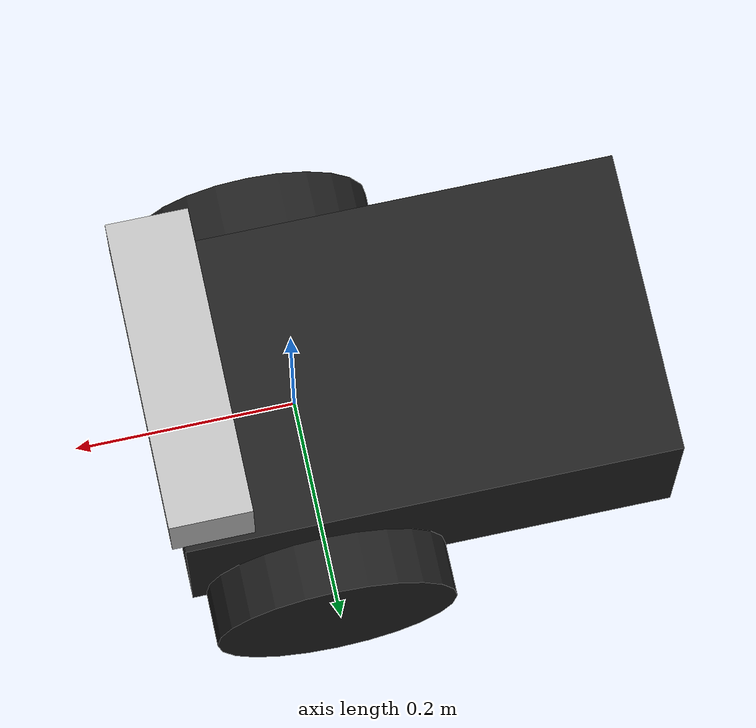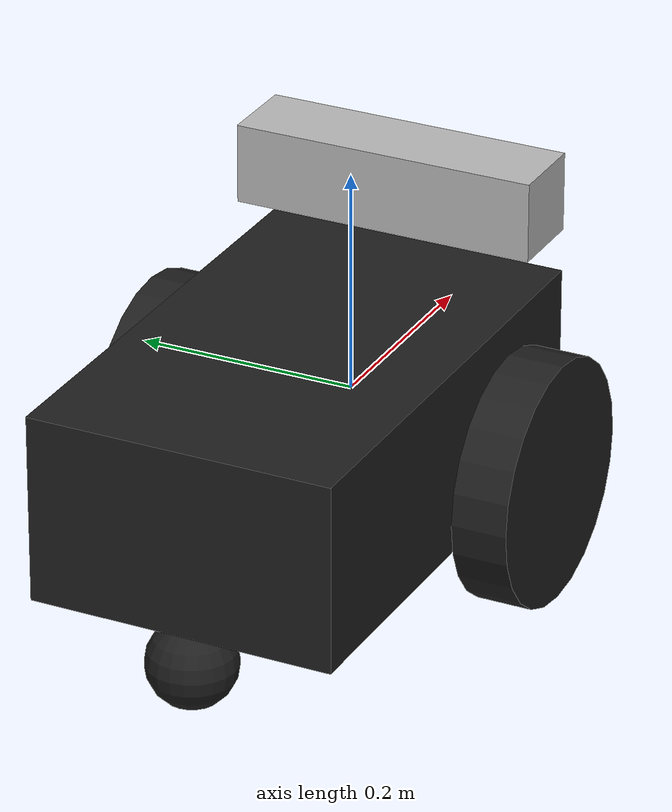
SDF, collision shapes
<?xml version='1.0'?>
<sdf version='1.6'>
  <model name='pioneer_with_kinect'>
    <model name='kinect_ros'>
      <pose frame=''>0.09846 0.001954 0.157068 0 -0 0</pose>
      <link name='link'>
        <inertial>
          <mass>0.1</mass>
        </inertial>
        <collision name='collision'>
          <geometry>
            <box>
              <size>0.073 0.276 0.072</size>
            </box>
          </geometry>
        </collision>
        <visual name='visual'>
          <geometry>
            <mesh>
              <uri>model://kinect/meshes/kinect.dae</uri>
            </mesh>
          </geometry>
        </visual>
        <sensor name='camera' type='depth'>
          <update_rate>20</update_rate>
          <camera name='__default__'>
            <horizontal_fov>1.0472</horizontal_fov>
            <image>
              <width>640</width>
              <height>480</height>
              <format>R8G8B8</format>
            </image>
            <clip>
              <near>0.05</near>
              <far>3</far>
            </clip>
          </camera>
          <plugin name='camera_plugin' filename='libgazebo_ros_openni_kinect.so'>
            <baseline>0.2</baseline>
            <alwaysOn>1</alwaysOn>
            <updateRate>0.0</updateRate>
            <cameraName>camera_ir</cameraName>
            <imageTopicName>/camera/color/image_raw</imageTopicName>
            <cameraInfoTopicName>/camera/color/camera_info</cameraInfoTopicName>
            <depthImageTopicName>/camera/depth/image_raw</depthImageTopicName>
            <depthImageCameraInfoTopicName>/camera/depth/camera_info</depthImageCameraInfoTopicName>
            <pointCloudTopicName>/camera/depth/points</pointCloudTopicName>
            <frameName>camera_link</frameName>
            <pointCloudCutoff>0.5</pointCloudCutoff>
            <pointCloudCutoffMax>3.0</pointCloudCutoffMax>
            <distortionK1>0</distortionK1>
            <distortionK2>0</distortionK2>
            <distortionK3>0</distortionK3>
            <distortionT1>0</distortionT1>
            <distortionT2>0</distortionT2>
            <CxPrime>0</CxPrime>
            <Cx>0</Cx>
            <Cy>0</Cy>
            <focalLength>0</focalLength>
            <hackBaseline>0</hackBaseline>
          </plugin>
        </sensor>
      </link>
    </model>
    <model name='pioneer2dx'>
      <link name='chassis'>
        <pose frame=''>0 0 0.16 0 -0 0</pose>
        <inertial>
          <mass>5.67</mass>
          <inertia>
            <ixx>0.07</ixx>
            <iyy>0.08</iyy>
            <izz>0.1</izz>
            <ixy>0</ixy>
            <ixz>0</ixz>
            <iyz>0</iyz>
          </inertia>
        </inertial>
        <collision name='collision'>
          <geometry>
            <box>
              <size>0.445 0.277 0.17</size>
            </box>
          </geometry>
        </collision>
        <collision name='castor_collision'>
          <pose frame=''>-0.2 0 -0.12 0 -0 0</pose>
          <geometry>
            <sphere>
              <radius>0.04</radius>
            </sphere>
          </geometry>
          <surface>
            <friction>
              <ode>
                <mu>0</mu>
                <mu2>0</mu2>
                <slip1>1</slip1>
                <slip2>1</slip2>
              </ode>
            </friction>
          </surface>
        </collision>
        <visual name='visual'>
          <pose frame=''>0 0 0.04 0 -0 0</pose>
          <geometry>
            <mesh>
              <uri>model://pioneer2dx/meshes/chassis.dae</uri>
            </mesh>
          </geometry>
        </visual>
        <visual name='castor_visual'>
          <pose frame=''>-0.2 0 -0.12 0 -0 0</pose>
          <geometry>
            <sphere>
              <radius>0.04</radius>
            </sphere>
          </geometry>
          <material>
            <script>
              <uri>file://media/materials/scripts/gazebo.material</uri>
              <name>Gazebo/FlatBlack</name>
            </script>
          </material>
        </visual>
      </link>
      <link name='right_wheel'>
        <pose frame=''>0.1 -0.17 0.11 -0 1.5707 1.5707</pose>
        <inertial>
          <mass>1.5</mass>
          <inertia>
            <ixx>0.0051</ixx>
            <iyy>0.0051</iyy>
            <izz>0.009</izz>
            <ixy>0</ixy>
            <ixz>0</ixz>
            <iyz>0</iyz>
          </inertia>
        </inertial>
        <collision name='collision'>
          <geometry>
            <cylinder>
              <radius>0.11</radius>
              <length>0.05</length>
            </cylinder>
          </geometry>
          <surface>
            <friction>
              <ode>
                <mu>100000</mu>
                <mu2>100000</mu2>
                <slip1>0</slip1>
                <slip2>0</slip2>
              </ode>
            </friction>
          </surface>
        </collision>
        <visual name='visual'>
          <geometry>
            <cylinder>
              <radius>0.11</radius>
              <length>0.05</length>
            </cylinder>
          </geometry>
          <material>
            <script>
              <uri>file://media/materials/scripts/gazebo.material</uri>
              <name>Gazebo/FlatBlack</name>
            </script>
          </material>
        </visual>
      </link>
      <link name='left_wheel'>
        <pose frame=''>0.1 0.17 0.11 -0 1.5707 1.5707</pose>
        <inertial>
          <mass>1.5</mass>
          <inertia>
            <ixx>0.0051</ixx>
            <iyy>0.0051</iyy>
            <izz>0.009</izz>
            <ixy>0</ixy>
            <ixz>0</ixz>
            <iyz>0</iyz>
          </inertia>
        </inertial>
        <collision name='collision'>
          <geometry>
            <cylinder>
              <radius>0.11</radius>
              <length>0.05</length>
            </cylinder>
          </geometry>
          <surface>
            <friction>
              <ode>
                <mu>100000</mu>
                <mu2>100000</mu2>
                <slip1>0</slip1>
                <slip2>0</slip2>
              </ode>
            </friction>
          </surface>
        </collision>
        <visual name='visual'>
          <geometry>
            <cylinder>
              <radius>0.11</radius>
              <length>0.05</length>
            </cylinder>
          </geometry>
          <material>
            <script>
              <uri>file://media/materials/scripts/gazebo.material</uri>
              <name>Gazebo/FlatBlack</name>
            </script>
          </material>
        </visual>
      </link>
      <joint name='left_wheel_hinge' type='revolute'>
        <pose frame=''>0 0 -0.03 0 -0 0</pose>
        <child>left_wheel</child>
        <parent>chassis</parent>
        <axis>
          <xyz>0 1 0</xyz>
          <use_parent_model_frame>1</use_parent_model_frame>
          <limit>
            <lower>-1e+16</lower>
            <upper>1e+16</upper>
          </limit>
        </axis>
      </joint>
      <joint name='right_wheel_hinge' type='revolute'>
        <pose frame=''>0 0 0.03 0 -0 0</pose>
        <child>right_wheel</child>
        <parent>chassis</parent>
        <axis>
          <xyz>0 1 0</xyz>
          <use_parent_model_frame>1</use_parent_model_frame>
          <limit>
            <lower>-1e+16</lower>
            <upper>1e+16</upper>
          </limit>
        </axis>
      </joint>
      <plugin name='diff_drive' filename='libDiffDrivePlugin.so'>
        <left_joint>left_wheel_hinge</left_joint>
        <right_joint>right_wheel_hinge</right_joint>
        <torque>5</torque>
      </plugin>
      <pose frame=''>-0.09846 -0.001954 -0.157068 0 -0 0</pose>
    </model>
    <joint name='chassis_JOINT_4' type='revolute'>
      <parent>pioneer2dx::chassis</parent>
      <child>kinect_ros::link</child>
      <pose frame=''>0 0 0 0 -0 0</pose>
      <axis>
        <xyz>1 0 0</xyz>
        <use_parent_model_frame>0</use_parent_model_frame>
        <limit>
          <lower>-1.79769e+308</lower>
          <upper>1.79769e+308</upper>
          <effort>-1</effort>
          <velocity>-1</velocity>
        </limit>
        <dynamics>
          <spring_reference>0</spring_reference>
          <spring_stiffness>0</spring_stiffness>
          <damping>0</damping>
        </dynamics>
      </axis>
      <physics>
        <ode>
          <limit>
            <cfm>0</cfm>
            <erp>0.2</erp>
          </limit>
          <suspension>
            <cfm>0</cfm>
            <erp>0.2</erp>
          </suspension>
        </ode>
      </physics>
    </joint>
    <static>0</static>
    <allow_auto_disable>1</allow_auto_disable>
  </model>
</sdf>
